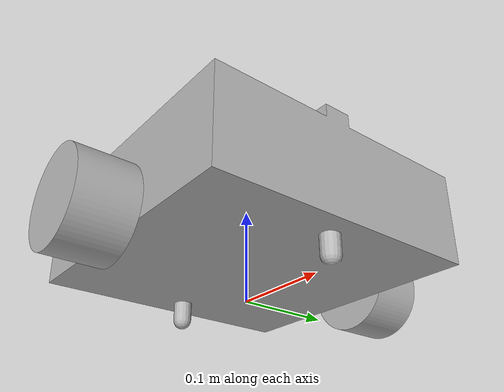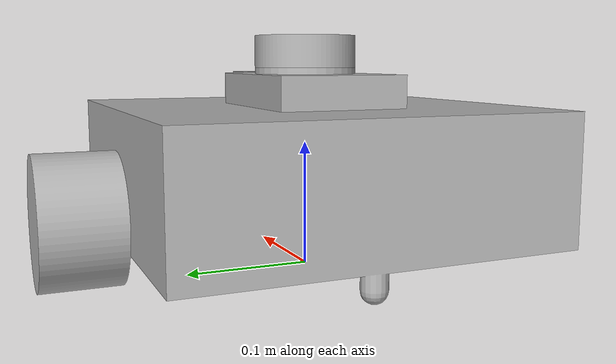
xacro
<?xml version="1.0" ?>
<robot name="KMU_robot" xmlns:xacro="http://www.ros.org/wiki/xacro">

<xacro:include filename="$(find KMU_robot_description)/urdf/materials.xacro" />
<xacro:include filename="$(find KMU_robot_description)/urdf/KMU_robot.trans" />
<xacro:include filename="$(find KMU_robot_description)/urdf/KMU_robot.gazebo" />
<link name="base_link">
  <inertial>
    <origin xyz="0.0002488091207785133 0.0 0.08268262568707396" rpy="0 0 0"/>
    <mass value="74.04778359315074"/>
    <inertia ixx="0.604556" iyy="0.612093" izz="1.072231" ixy="-0.0" iyz="0.0" ixz="-0.001102"/>
  </inertial>
  <visual>
    <origin xyz="0 0 0" rpy="0 0 0"/>
    <geometry>
      <mesh filename="package://KMU_robot_description/meshes/base_link.stl" scale="0.001 0.001 0.001"/>
    </geometry>
    <material name="silver"/>
  </visual>
  <collision>
    <origin xyz="0 0 0" rpy="0 0 0"/>
    <geometry>
      <mesh filename="package://KMU_robot_description/meshes/base_link.stl" scale="0.001 0.001 0.001"/>
    </geometry>
  </collision>
</link>

<link name="right_vel_1">
  <inertial>
    <origin xyz="9.650038500203382e-18 -0.030000000000000027 6.938893903907228e-18" rpy="0 0 0"/>
    <mass value="3.6992253496019805"/>
    <inertia ixx="0.003422" iyy="0.004624" izz="0.003422" ixy="-0.0" iyz="0.0" ixz="0.0"/>
  </inertial>
  <visual>
    <origin xyz="-0.0 0.151 -0.05" rpy="0 0 0"/>
    <geometry>
      <mesh filename="package://KMU_robot_description/meshes/right_vel_1.stl" scale="0.001 0.001 0.001"/>
    </geometry>
    <material name="silver"/>
  </visual>
  <collision>
    <origin xyz="-0.0 0.151 -0.05" rpy="0 0 0"/>
    <geometry>
      <mesh filename="package://KMU_robot_description/meshes/right_vel_1.stl" scale="0.001 0.001 0.001"/>
    </geometry>
  </collision>
</link>

<link name="left_vel_1">
  <inertial>
    <origin xyz="9.650038500203382e-18 0.030000000000000027 6.938893903907228e-18" rpy="0 0 0"/>
    <mass value="3.6992253496019805"/>
    <inertia ixx="0.003422" iyy="0.004624" izz="0.003422" ixy="0.0" iyz="0.0" ixz="0.0"/>
  </inertial>
  <visual>
    <origin xyz="-0.0 -0.151 -0.05" rpy="0 0 0"/>
    <geometry>
      <mesh filename="package://KMU_robot_description/meshes/left_vel_1.stl" scale="0.001 0.001 0.001"/>
    </geometry>
    <material name="silver"/>
  </visual>
  <collision>
    <origin xyz="-0.0 -0.151 -0.05" rpy="0 0 0"/>
    <geometry>
      <mesh filename="package://KMU_robot_description/meshes/left_vel_1.stl" scale="0.001 0.001 0.001"/>
    </geometry>
  </collision>
</link>

<link name="lidar_1">
  <inertial>
    <origin xyz="-9.04691109394067e-18 0.0 0.012499999999999983" rpy="0 0 0"/>
    <mass value="0.986460093227195"/>
    <inertia ixx="0.000446" iyy="0.000446" izz="0.000789" ixy="-0.0" iyz="0.0" ixz="0.0"/>
  </inertial>
  <visual>
    <origin xyz="-0.0 -0.0 -0.16" rpy="0 0 0"/>
    <geometry>
      <mesh filename="package://KMU_robot_description/meshes/lidar_1.stl" scale="0.001 0.001 0.001"/>
    </geometry>
    <material name="silver"/>
  </visual>
  <collision>
    <origin xyz="-0.0 -0.0 -0.16" rpy="0 0 0"/>
    <geometry>
      <mesh filename="package://KMU_robot_description/meshes/lidar_1.stl" scale="0.001 0.001 0.001"/>
    </geometry>
  </collision>
</link>

<joint name="Revolute 1" type="continuous">
  <origin xyz="0.0 -0.151 0.05" rpy="0 0 0"/>
  <parent link="base_link"/>
  <child link="right_vel_1"/>
  <axis xyz="0.0 -1.0 0.0"/>
</joint>

<joint name="Revolute 2" type="continuous">
  <origin xyz="0.0 0.151 0.05" rpy="0 0 0"/>
  <parent link="base_link"/>
  <child link="left_vel_1"/>
  <axis xyz="0.0 1.0 0.0"/>
</joint>

<joint name="Revolute 3" type="continuous">
  <origin xyz="0.0 0.0 0.16" rpy="0 0 0"/>
  <parent link="base_link"/>
  <child link="lidar_1"/>
  <axis xyz="0.0 0.0 1.0"/>
</joint>

</robot>

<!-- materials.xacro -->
<robot name="KMU_robot" xmlns:xacro="http://www.ros.org/wiki/xacro" >

<material name="silver">
  <color rgba="0.700 0.700 0.700 1.000"/>
</material>

</robot>

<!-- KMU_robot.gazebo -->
<robot name="KMU_robot" xmlns:xacro="http://www.ros.org/wiki/xacro" >

<xacro:property name="body_color" value="Gazebo/Silver" />

<gazebo>
  <plugin name="control" filename="libgazebo_ros_control.so"/>
</gazebo>
<gazebo reference="base_link">
  <material>${body_color}</material>
  <mu1>0.2</mu1>
  <mu2>0.2</mu2>
  <self_collide>true</self_collide>
  <gravity>true</gravity>
</gazebo>

<gazebo reference="right_vel_1">
  <material>${body_color}</material>
  <mu1>0.2</mu1>
  <mu2>0.2</mu2>
  <self_collide>true</self_collide>
</gazebo>

<gazebo reference="left_vel_1">
  <material>${body_color}</material>
  <mu1>0.2</mu1>
  <mu2>0.2</mu2>
  <self_collide>true</self_collide>
</gazebo>

<gazebo reference="lidar_1">
  <material>${body_color}</material>
  <mu1>0.2</mu1>
  <mu2>0.2</mu2>
  <self_collide>true</self_collide>
</gazebo>

</robot>
